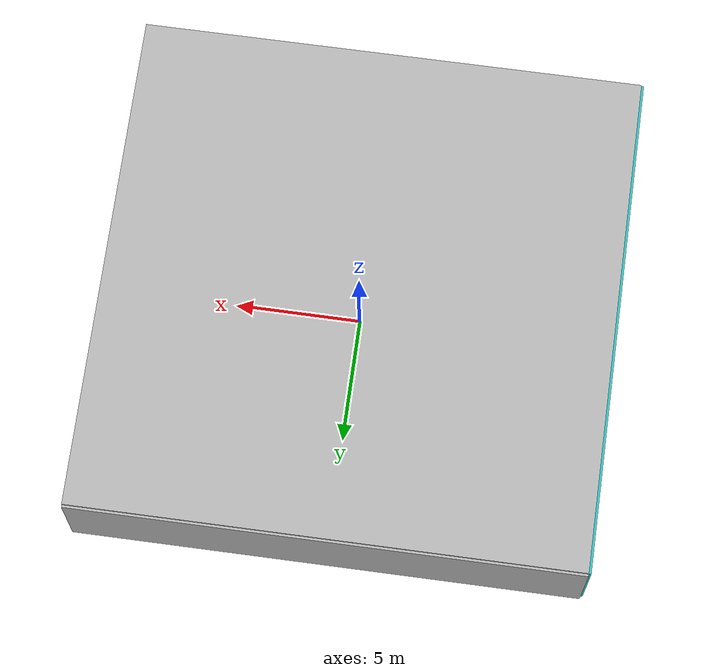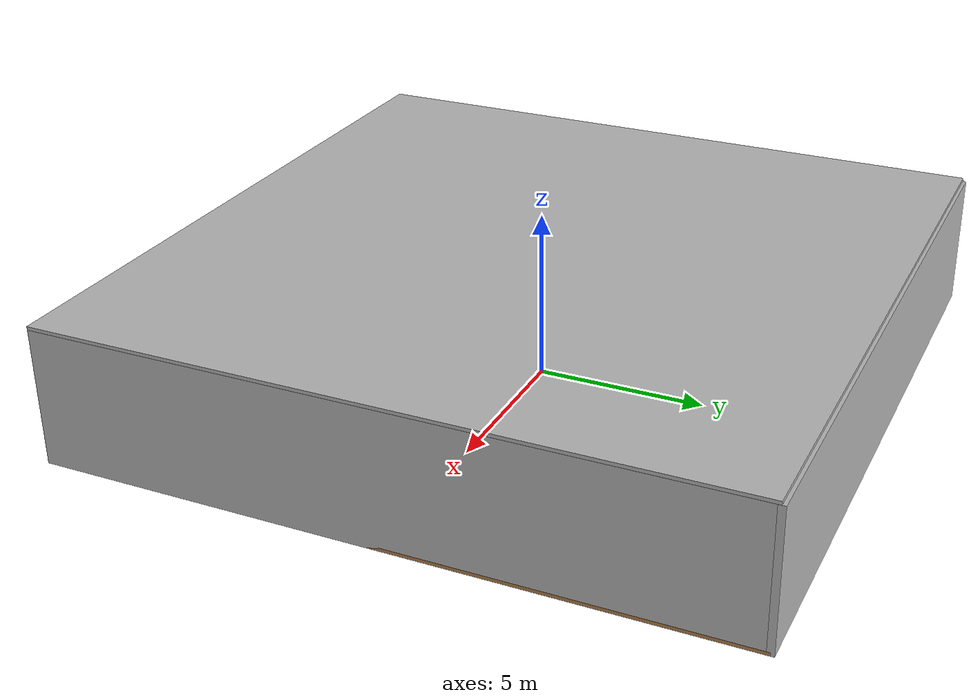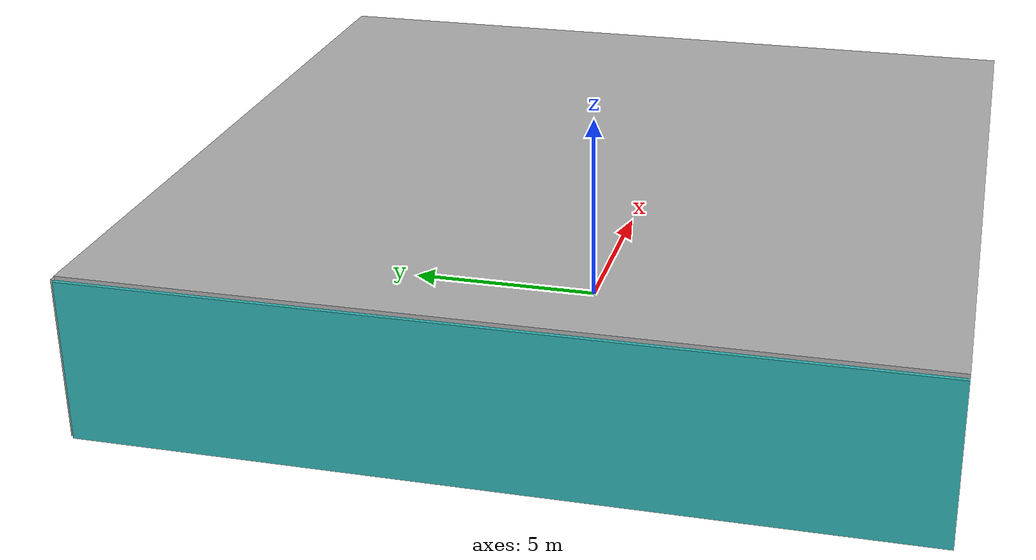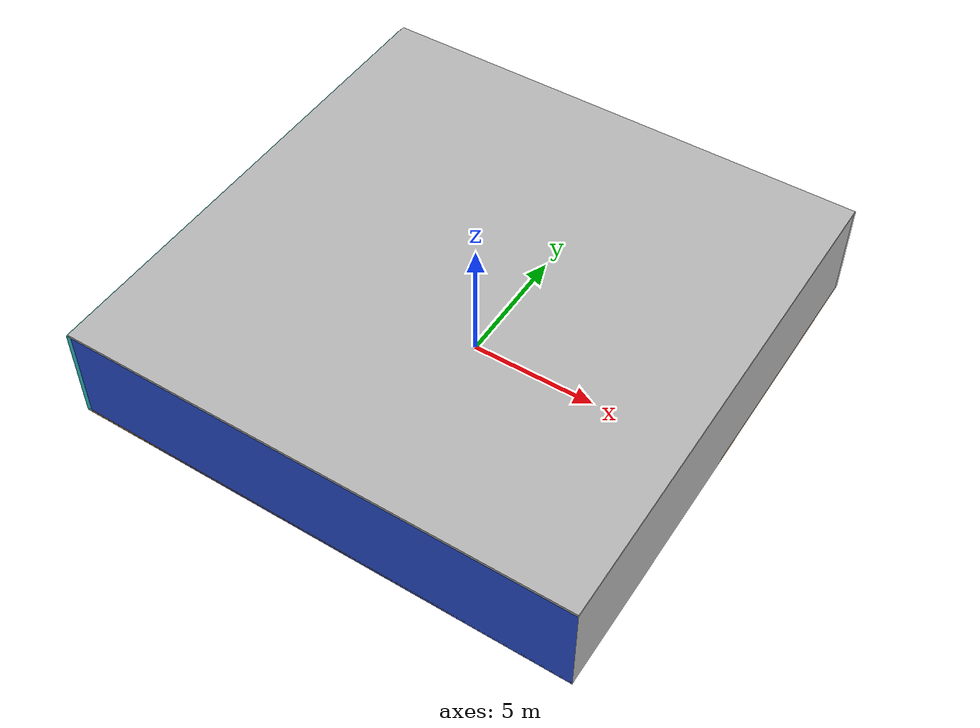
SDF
<sdf version="1.4">
 <world name="default">
  <physics type="ode">
   <max_step_size>0.001</max_step_size>
   <real_time_factor>1</real_time_factor>
   <real_time_update_rate>1000</real_time_update_rate>
   <gravity>0 0 -9.8</gravity>
  </physics>
  <scene><ambient>0.4 0.4 0.4 1</ambient><background>0.7 0.7 0.7 1</background><shadows>1</shadows></scene>
  <model name="Surrounding">
   <static>1</static>
   <link name="Ceiling">
    <collision name="Ceiling_Collision"><geometry><box><size>20 20 0.1</size></box></geometry></collision>
    <visual name="Ceiling_Visual">
     <geometry><box><size>20 20 0.1</size></box></geometry>
     <material>
      <script><uri>file://media/materials/scripts/gazebo.material</uri><name>Gazebo/Pioneer2Body</name></script>
     </material>
    </visual>
    <pose>0 0 4.05 0 0 0</pose>
   </link>
   <link name="Wall_South">
    <collision name="Wall_South_Collision">
     <geometry><box><size>20 0 4</size></box></geometry>
     <pose>0 0 2 0 -0 0</pose>
    </collision>
    <visual name="Wall_South_Visual">
     <pose>0 0 2 0 -0 0</pose>
     <geometry><box><size>20 0 4</size></box></geometry>
     <material>
      <script><uri>file://media/materials/scripts/gazebo.material</uri><name>Gazebo/BlueGlow</name></script>
     </material>
    </visual>
    <velocity_decay><linear>0</linear><angular>0</angular></velocity_decay>
    <pose>0 -10 0 0 -0 0</pose>
   </link>
   <link name="Wall_East">
    <collision name="Wall_21_Collision">
     <geometry><box><size>20 0 4</size></box></geometry>
     <pose>0 0 2 0 -0 0</pose>
    </collision>
    <visual name="Wall_21_Visual">
     <pose>0 0 2 0 -0 0</pose>
     <geometry><box><size>20 0 4</size></box></geometry>
     <material>
      <script><uri>file://media/materials/scripts/gazebo.material</uri><name>Gazebo/JointAnchor</name></script>
     </material>
    </visual>
    <velocity_decay><linear>0</linear><angular>0</angular></velocity_decay>
    <pose>10 0 0 0 -0 1.5708</pose>
   </link>
   <link name="Wall_North">
    <collision name="Wall_22_Collision">
     <geometry><box><size>20 0.2 4</size></box></geometry>
     <pose>0 0 2 0 -0 0</pose>
    </collision>
    <visual name="Wall_22_Visual">
     <pose>0 0 2 0 -0 0</pose>
     <geometry><box><size>20 0.2 4</size></box></geometry>
     <material>
      <script><uri>file://media/materials/scripts/gazebo.material</uri><name>Gazebo/CloudySky</name></script>
     </material>
    </visual>
    <velocity_decay><linear>0</linear><angular>0</angular></velocity_decay>
    <pose>0 10 0 0 -0 0</pose>
   </link>
   <link name="Wall_West">
    <collision name="Wall_23_Collision">
     <geometry><box><size>20 0.2 4</size></box></geometry>
     <pose>0 0 2 0 -0 0</pose>
    </collision>
    <visual name="Wall_23_Visual">
     <pose>0 0 2 0 -0 0</pose>
     <geometry><box><size>20 0.2 4</size></box></geometry>
     <material>
      <script><uri>file://media/materials/scripts/gazebo.material</uri><name>Gazebo/Turquoise</name></script>
     </material>
    </visual>
    <velocity_decay><linear>0</linear><angular>0</angular></velocity_decay>
    <pose>-10 0 0 0 0 -1.5708</pose>
   </link>
   <link name="Ground_link">
    <collision name="collision">
     <pose>0 0 .05 0 -0 0</pose>
     <geometry><box><size>20 20 0.1</size></box></geometry>
    </collision>
    <visual name="visual">
     <pose>0 0 .05 0 -0 0</pose>
     <geometry><box><size>20 20 0.1</size></box></geometry>
     <material>
      <script><uri>file://media/materials/scripts/gazebo.material</uri><name>Gazebo/WoodFloor</name></script>
     </material>
    </visual>
   </link>
   <static>1</static>
  </model>
  <spherical_coordinates>
   <surface_model>EARTH_WGS84</surface_model>
   <latitude_deg>0</latitude_deg>
   <longitude_deg>0</longitude_deg>
   <elevation>0</elevation>
   <heading_deg>0</heading_deg>
  </spherical_coordinates>
  <light name="lightball_0" type="diffuse">
   <diffuse>0.8 0.8 0.8 1</diffuse>
   <specular>0.2 0.2 0.2 1</specular>
   <attenuation>
    <range>100</range>
    <constant>0.7</constant>
    <linear>0.01</linear>
    <quadratic>0.001</quadratic>
   </attenuation>
   <direction>-0.5 0.1 -0.9</direction>
   <pose>-0.531081652543 4.19270026943 1.10291564853 0 0 0</pose>
  </light>
  <light name="lightball_1" type="diffuse">
   <diffuse>0.8 0.8 0.8 1</diffuse>
   <specular>0.2 0.2 0.2 1</specular>
   <attenuation>
    <range>100</range>
    <constant>0.7</constant>
    <linear>0.01</linear>
    <quadratic>0.001</quadratic>
   </attenuation>
   <direction>-0.5 0.1 -0.9</direction>
   <pose>-3.50313883774 -7.93454780751 2.99068073139 0 0 0</pose>
  </light>
  <light name="lightball_2" type="diffuse">
   <diffuse>0.8 0.8 0.8 1</diffuse>
   <specular>0.2 0.2 0.2 1</specular>
   <attenuation>
    <range>100</range>
    <constant>0.7</constant>
    <linear>0.01</linear>
    <quadratic>0.001</quadratic>
   </attenuation>
   <direction>-0.5 0.1 -0.9</direction>
   <pose>8.11559071176 9.58203554183 1.53880650942 0 0 0</pose>
  </light>
  <light name="lightball_3" type="diffuse">
   <diffuse>0.8 0.8 0.8 1</diffuse>
   <specular>0.2 0.2 0.2 1</specular>
   <attenuation>
    <range>100</range>
    <constant>0.7</constant>
    <linear>0.01</linear>
    <quadratic>0.001</quadratic>
   </attenuation>
   <direction>-0.5 0.1 -0.9</direction>
   <pose>3.9650748174 -9.96219770089 3.82467066112 0 0 0</pose>
  </light>
  <include><uri>model://cabinet</uri><pose>-6.35499596527 -4.56517936445 0 0 0 0.097702229664</pose></include>
  <include>
   <uri>model://construction_cone</uri>
   <pose>-8.00660923816 7.39439157549 0 0 0 0.264164580079</pose>
  </include>
  <include><uri>model://cabinet</uri><pose>-4.16614643671 -6.41310621246 0 0 0 0.182410366241</pose></include>
  <include><uri>model://cabinet</uri><pose>-3.75531940458 -0.731881950406 0 0 0 0.491965241568</pose></include>
  <include>
   <uri>model://construction_cone</uri>
   <pose>-1.61071087671 8.46996026227 0 0 0 1.36956464428</pose>
  </include>
  <include>
   <uri>model://construction_cone</uri>
   <pose>0.915719319041 -8.67744984936 0 0 0 0.65185077615</pose>
  </include>
  <include>
   <uri>model://robocup_3Dsim_goal</uri>
   <pose>2.40863803531 -5.48828664326 0 0 0 2.48471069807</pose>
  </include>
  <include><uri>model://table</uri><pose>7.32575838705 6.62973210607 0 0 0 1.17051628047</pose></include>
 </world>
</sdf>

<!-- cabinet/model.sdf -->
<sdf version="1.5">
  <model name="cabinet">
    <static>true</static>
    <link name="cabinet_bottom_plate">
      <inertial>
        <pose>0 0 -1 0 0 0</pose>
        <inertia>
          <ixx>2.050000</ixx>
          <ixy>0</ixy>
          <ixz>0</ixz>
          <iyy>2.050000</iyy>
          <iyz>0</iyz>
          <izz>2.050000</izz>
        </inertia>
        <mass>25.000000</mass>
      </inertial>
      <collision name="cabinet_bottom_plate_geom">
        <pose>0 0 0.010000 0 0 0</pose>
        <geometry>
          <box>
            <size>0.450000 0.450000 0.020000</size>
          </box>
        </geometry>
      </collision>
      <visual name="cabinet_bottom_plate_geom_visual">
        <pose>0 0 0.010000 0 0 0</pose>
        <geometry>
          <box>
            <size>0.450000 0.450000 0.020000</size>
          </box>
        </geometry>
        <material>
          <script>
            <uri>model://media/materials/scripts/gazebo.material</uri>
            <name>Gazebo/Wood</name>
          </script>
        </material>
      </visual>
      <collision name="cabinet_bottom_plate_geom_cabinet_back_plate">
        <pose>0.235000 0 0.510000 0 0 0</pose>
        <geometry>
          <box>
            <size>0.020000 0.450000 1.020000</size>
          </box>
        </geometry>
      </collision>
      <visual name="cabinet_bottom_plate_geom_cabinet_back_plate_visual">
        <pose>0.235000 0 0.510000 0 0 0</pose>
        <geometry>
          <box>
            <size>0.020000 0.450000 1.020000</size>
          </box>
        </geometry>
        <material>
          <script>
            <uri>model://media/materials/scripts/gazebo.material</uri>
            <name>Gazebo/Wood</name>
          </script>
        </material>
      </visual>
      <collision name="cabinet_bottom_plate_geom_cabinet_left_plate">
        <pose>0 0.235000 0.510000 0 0 0</pose>
        <geometry>
          <box>
            <size>0.450000 0.020000 1.020000</size>
          </box>
        </geometry>
      </collision>
      <visual name="cabinet_bottom_plate_geom_cabinet_left_plate_visual">
        <pose>0 0.235000 0.510000 0 0 0</pose>
        <geometry>
          <box>
            <size>0.450000 0.020000 1.020000</size>
          </box>
        </geometry>
        <material>
          <script>
            <uri>model://media/materials/scripts/gazebo.material</uri>
            <name>Gazebo/Wood</name>
          </script>
        </material>
      </visual>
      <collision name="cabinet_bottom_plate_geom_cabinet_middle_plate">
        <pose>0 0 0.510000 0 0 0</pose>
        <geometry>
          <box>
            <size>0.450000 0.450000 0.020000</size>
          </box>
        </geometry>
      </collision>
      <visual name="cabinet_bottom_plate_geom_cabinet_middle_plate_visual">
        <pose>0 0 0.510000 0 0 0</pose>
        <geometry>
          <box>
            <size>0.450000 0.450000 0.020000</size>
          </box>
        </geometry>
        <material>
          <script>
            <uri>model://media/materials/scripts/gazebo.material</uri>
            <name>Gazebo/Wood</name>
          </script>
        </material>
      </visual>
      <collision name="cabinet_bottom_plate_geom_cabinet_right_plate">
        <pose>0 -0.235000 0.510000 0 0 0</pose>
        <geometry>
          <box>
            <size>0.450000 0.020000 1.020000</size>
          </box>
        </geometry>
      </collision>
      <visual name="cabinet_bottom_plate_geom_cabinet_right_plate_visual">
        <pose>0 -0.235000 0.510000 0 0 0</pose>
        <geometry>
          <box>
            <size>0.450000 0.020000 1.020000</size>
          </box>
        </geometry>
        <material>
          <script>
            <uri>model://media/materials/scripts/gazebo.material</uri>
            <name>Gazebo/Wood</name>
          </script>
        </material>
      </visual>
      <collision name="cabinet_bottom_plate_geom_cabinet_top_plate">
        <pose>0 0 1.010000 0 0 0</pose>
        <geometry>
          <box>
            <size>0.450000 0.450000 0.020000</size>
          </box>
        </geometry>
      </collision>
      <visual name="cabinet_bottom_plate_geom_cabinet_top_plate_visual">
        <pose>0 0 1.010000 0 0 0</pose>
        <geometry>
          <box>
            <size>0.450000 0.450000 0.020000</size>
          </box>
        </geometry>
        <material>
          <script>
            <uri>model://media/materials/scripts/gazebo.material</uri>
            <name>Gazebo/Wood</name>
          </script>
        </material>
      </visual>
    </link>
  </model>
</sdf>

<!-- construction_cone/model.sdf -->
<sdf version="1.5">
  <model name="Construction Cone">
    <link name="link">
      <collision name="collision">
        <geometry>
          <mesh>
            <scale>10 10 10</scale>
            <uri>file://isr-testbed/construction_cone/meshes/construction_cone.dae</uri>
          </mesh>
        </geometry>
      </collision>
      <visual name="visual">
        <geometry>
          <mesh>
            <scale>10 10 10</scale>
            <uri>file://isr-testbed/construction_cone/meshes/construction_cone.dae</uri>
          </mesh>
        </geometry>
      </visual>
    </link>
  </model>
</sdf>

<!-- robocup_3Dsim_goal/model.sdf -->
<sdf version="1.5">
  <model name="robocup_3d_goal">
    <static>true</static>
    <link name="left_post">
      <pose>0 1.05 0.45 0 0 0</pose>
      <collision name="collision">
        <geometry>
          <cylinder>
            <radius>0.05</radius>
            <length>0.9</length>
          </cylinder>
        </geometry>
      </collision>
      <visual name="visual">
        <geometry>
          <cylinder>
            <radius>0.05</radius>
            <length>0.9</length>
          </cylinder>
        </geometry>
        <material>
          <script>
            <uri>file://media/materials/scripts/gazebo.material</uri>
            <name>Gazebo/ZincYellow</name>
          </script>
        </material>
      </visual>
    </link>
    <link name="left_support_horiz_lower">
      <pose>0.30 1.05 0.01 0 0 0</pose>
      <collision name="collision">
        <geometry>
          <box>
            <size>0.50 0.02 0.02</size>
          </box>
        </geometry>
      </collision>
      <visual name="visual">
        <geometry>
          <box>
            <size>0.50 0.02 0.02</size>
          </box>
        </geometry>
        <material>
          <script>
            <uri>file://media/materials/scripts/gazebo.material</uri>
            <name>Gazebo/White</name>
          </script>
        </material>
      </visual>
    </link>
    <link name="left_support_horiz_upper">
      <pose>0.30 1.05 0.79 0 0 0</pose>
      <collision name="collision">
        <geometry>
          <box>
            <size>0.50 0.02 0.02</size>
          </box>
        </geometry>
      </collision>
      <visual name="visual">
        <geometry>
          <box>
            <size>0.50 0.02 0.02</size>
          </box>
        </geometry>
        <material>
          <script>
            <uri>file://media/materials/scripts/gazebo.material</uri>
            <name>Gazebo/White</name>
          </script>
        </material>
      </visual>
    </link>
    <link name="left_support_vertical">
      <pose>0.56 1.05 0.4 0 1.5708 0</pose>
      <collision name="collision">
        <geometry>
          <box>
            <size>0.80 0.02 0.02</size>
          </box>
        </geometry>
      </collision>
      <visual name="visual">
        <geometry>
          <box>
            <size>0.80 0.02 0.02</size>
          </box>
        </geometry>
        <material>
          <script>
            <uri>file://media/materials/scripts/gazebo.material</uri>
            <name>Gazebo/White</name>
          </script>
        </material>
      </visual>
    </link>
    <link name="right_support_horiz_lower">
      <pose>0.30 -1.05 0.01 0 0 0</pose>
      <collision name="collision">
        <geometry>
          <box>
            <size>0.50 0.02 0.02</size>
          </box>
        </geometry>
      </collision>
      <visual name="visual">
        <geometry>
          <box>
            <size>0.50 0.02 0.02</size>
          </box>
        </geometry>
        <material>
          <script>
            <uri>file://media/materials/scripts/gazebo.material</uri>
            <name>Gazebo/White</name>
          </script>
        </material>
      </visual>
    </link>
    <link name="right_support_horiz_upper">
      <pose>0.30 -1.05 0.79 0 0 0</pose>
      <collision name="collision">
        <geometry>
          <box>
            <size>0.50 0.02 0.02</size>
          </box>
        </geometry>
      </collision>
      <visual name="visual">
        <geometry>
          <box>
            <size>0.50 0.02 0.02</size>
          </box>
        </geometry>
        <material>
          <script>
            <uri>file://media/materials/scripts/gazebo.material</uri>
            <name>Gazebo/White</name>
          </script>
        </material>
      </visual>
    </link>
    <link name="right_support_vertical">
      <pose>0.56 -1.05 0.4 0 1.5708 0</pose>
      <collision name="collision">
        <geometry>
          <box>
            <size>0.80 0.02 0.02</size>
          </box>
        </geometry>
      </collision>
      <visual name="visual">
        <geometry>
          <box>
            <size>0.80 0.02 0.02</size>
          </box>
        </geometry>
        <material>
          <script>
            <uri>file://media/materials/scripts/gazebo.material</uri>
            <name>Gazebo/White</name>
          </script>
        </material>
      </visual>
    </link>
    <link name="center_support_horiz_lower">
      <pose>0.56 0 0.01 0 1.5708 0</pose>
      <collision name="collision">
        <geometry>
          <box>
            <size>0.02 2.08 0.02</size>
          </box>
        </geometry>
      </collision>
      <visual name="visual">
        <geometry>
          <box>
            <size>0.02 2.08 0.02</size>
          </box>
        </geometry>
        <material>
          <script>
            <uri>file://media/materials/scripts/gazebo.material</uri>
            <name>Gazebo/White</name>
          </script>
        </material>
      </visual>
    </link>
    <link name="center_support_horiz_upper">
      <pose>0.56 0 0.79 0 1.5708 0</pose>
      <collision name="collision">
        <geometry>
          <box>
            <size>0.02 2.08 0.02</size>
          </box>
        </geometry>
      </collision>
      <visual name="visual">
        <geometry>
          <box>
            <size>0.02 2.08 0.02</size>
          </box>
        </geometry>
        <material>
          <script>
            <uri>file://media/materials/scripts/gazebo.material</uri>
            <name>Gazebo/White</name>
          </script>
        </material>
      </visual>
    </link>
    <link name="right_post">
      <pose>0 -1.05 0.45 0 0 0</pose>
      <collision name="collision">
        <geometry>
          <cylinder>
            <radius>0.05</radius>
            <length>0.9</length>
          </cylinder>
        </geometry>
      </collision>
      <visual name="visual">
        <geometry>
          <cylinder>
            <radius>0.05</radius>
            <length>0.9</length>
          </cylinder>
        </geometry>
        <material>
          <script>
            <uri>file://media/materials/scripts/gazebo.material</uri>
            <name>Gazebo/ZincYellow</name>
          </script>
        </material>
      </visual>
    </link>
    <link name="crossbar">
      <pose>0 0 0.85 1.57 1.57 0</pose>
      <collision name="collision">
        <geometry>
          <cylinder>
            <radius>0.05</radius>
            <length>2.0</length>
          </cylinder>
        </geometry>
      </collision>
      <visual name="visual">
        <geometry>
          <cylinder>
            <radius>0.05</radius>
            <length>2.0</length>
          </cylinder>
        </geometry>
        <material>
          <script>
            <uri>file://media/materials/scripts/gazebo.material</uri>
            <name>Gazebo/ZincYellow</name>
          </script>
        </material>
      </visual>
    </link>
    <link name="center_net">
      <pose>0.56 0 0.40 0 0 0</pose>
      <collision name="collision">
        <geometry>
          <box>
            <size>0.01 2.1 0.80</size>
          </box>
        </geometry>
      </collision>
      <visual name="visual">
        <geometry>
          <box>
            <size>0.01 2.1 0.80</size>
          </box>
        </geometry>
        <material>
          <script>
            <uri>model://../model_source/models/robocup09_spl_field/materials/scripts/</uri>
            <uri>model://../model_source/models/robocup09_spl_field/materials/textures/</uri>
            <name>RoboCup/Net</name>
          </script>
        </material>
      </visual>
    </link>
    <link name="left_net">
      <pose>0.30 1.05 0.40 0 0 0</pose>
      <collision name="collision">
        <geometry>
          <box>
            <size>0.50 0.01 0.76</size>
          </box>
        </geometry>
      </collision>
      <visual name="visual">
        <geometry>
          <box>
            <size>0.50 0.01 0.76</size>
          </box>
        </geometry>
        <material>
          <script>
            <uri>model://../model_source/models/robocup09_spl_field/materials/scripts/</uri>
            <uri>model://../model_source/models/robocup09_spl_field/materials/textures/</uri>
            <name>RoboCup/Net</name>
          </script>
        </material>
      </visual>
    </link>
    <link name="right_net">
      <pose>0.30 -1.05 0.40 0 0 0</pose>
      <collision name="collision">
        <geometry>
          <box>
            <size>0.50 0.01 0.76</size>
          </box>
        </geometry>
      </collision>
      <visual name="visual">
        <geometry>
          <box>
            <size>0.50 0.01 0.76</size>
          </box>
        </geometry>
        <material>
          <script>
            <uri>model://../model_source/models/robocup09_spl_field/materials/scripts/</uri>
            <uri>model://../model_source/models/robocup09_spl_field/materials/textures/</uri>
            <name>RoboCup/Net</name>
          </script>
        </material>
      </visual>
    </link>
  </model>
</sdf>

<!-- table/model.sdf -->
<sdf version="1.5">
  <model name="table">
    <static>true</static>
    <link name="link">
      <collision name="surface">
        <pose>0 0 1.0 0 0 0</pose>
        <geometry>
          <box>
            <size>1.5 0.8 0.03</size>
          </box>
        </geometry>
        <surface>
          <friction>
            <ode>
              <mu>0.6</mu>
              <mu2>0.6</mu2>
            </ode>
          </friction>
        </surface>
      </collision>
      <visual name="visual1">
        <pose>0 0 1.0 0 0 0</pose>
        <geometry>
          <box>
            <size>1.5 0.8 0.03</size>
          </box>
        </geometry>
        <material>
          <script>
            <uri>model://media/materials/scripts/gazebo.material</uri>
            <name>Gazebo/Wood</name>
          </script>
        </material>
      </visual>
      <collision name="front_left_leg">
        <pose>0.68 0.38 0.5 0 0 0</pose>
        <geometry>
          <cylinder>
            <radius>0.02</radius>
            <length>1.0</length>
          </cylinder>
        </geometry>
      </collision>
      <visual name="front_left_leg">
        <pose>0.68 0.38 0.5 0 0 0</pose>
        <geometry>
          <cylinder>
            <radius>0.02</radius>
            <length>1.0</length>
          </cylinder>
        </geometry>
        <material>
          <script>
            <uri>model://media/materials/scripts/gazebo.material</uri>
            <name>Gazebo/Grey</name>
          </script>
        </material>
      </visual>
      <collision name="front_right_leg">
        <pose>0.68 -0.38 0.5 0 0 0</pose>
        <geometry>
          <cylinder>
            <radius>0.02</radius>
            <length>1.0</length>
          </cylinder>
        </geometry>
      </collision>
      <visual name="front_right_leg">
        <pose>0.68 -0.38 0.5 0 0 0</pose>
        <geometry>
          <cylinder>
            <radius>0.02</radius>
            <length>1.0</length>
          </cylinder>
        </geometry>
        <material>
          <script>
            <uri>model://media/materials/scripts/gazebo.material</uri>
            <name>Gazebo/Grey</name>
          </script>
        </material>
      </visual>
      <collision name="back_right_leg">
        <pose>-0.68 -0.38 0.5 0 0 0</pose>
        <geometry>
          <cylinder>
            <radius>0.02</radius>
            <length>1.0</length>
          </cylinder>
        </geometry>
      </collision>
      <visual name="back_right_leg">
        <pose>-0.68 -0.38 0.5 0 0 0</pose>
        <geometry>
          <cylinder>
            <radius>0.02</radius>
            <length>1.0</length>
          </cylinder>
        </geometry>
        <material>
          <script>
            <uri>model://media/materials/scripts/gazebo.material</uri>
            <name>Gazebo/Grey</name>
          </script>
        </material>
      </visual>
      <collision name="back_left_leg">
        <pose>-0.68 0.38 0.5 0 0 0</pose>
        <geometry>
          <cylinder>
            <radius>0.02</radius>
            <length>1.0</length>
          </cylinder>
        </geometry>
      </collision>
      <visual name="back_left_leg">
        <pose>-0.68 0.38 0.5 0 0 0</pose>
        <geometry>
          <cylinder>
            <radius>0.02</radius>
            <length>1.0</length>
          </cylinder>
        </geometry>
        <material>
          <script>
            <uri>model://media/materials/scripts/gazebo.material</uri>
            <name>Gazebo/Grey</name>
          </script>
        </material>
      </visual>
    </link>
  </model>
</sdf>
